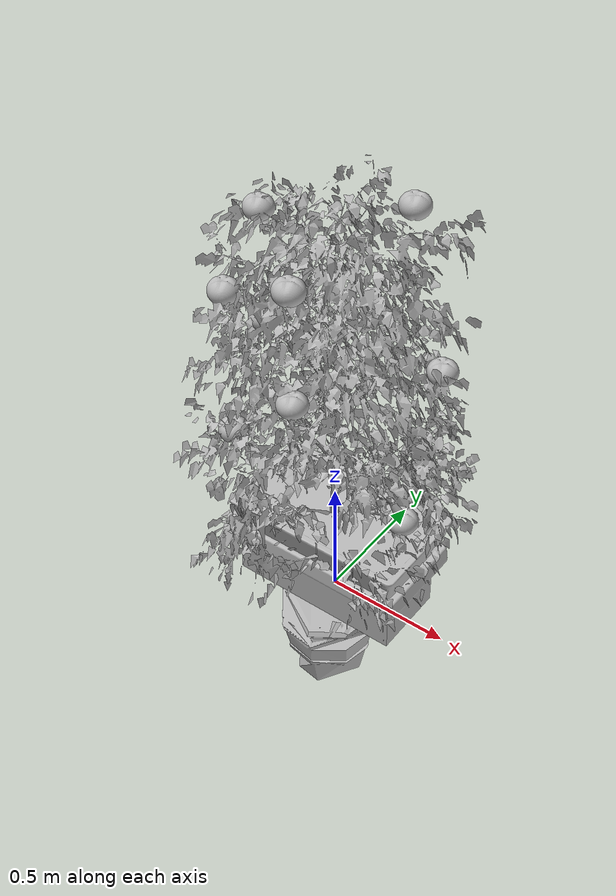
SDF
<?xml version="1.0"?>
<sdf version="1.6">
    <model name="plant_2">
    	<static>true</static>
      <include>
        <uri>model://models/plant</uri>
        <name>plant_2</name>
        <pose> 0 0 -0.45 0 0 0.3385939</pose>
      </include>

            <include>
        <uri>model://models/trough</uri>
        <name>trough</name>
        <pose>0 0 0 1.57 0 0</pose>
      </include>

      <include>
        <uri>model://models/tomato</uri>
        <name>tomato_20</name>
        <pose>-0.297 0.244 0.695 0 0 0</pose>
      </include>

      <include>
        <uri>model://models/tomato</uri>
        <name>tomato_21</name>
        <pose>0.164 0.199 1.684 0 0 0</pose>
      </include>

      <include>
        <uri>model://models/tomato</uri>
        <name>tomato_22</name>
        <pose>0.394 -0.151 0.705 0 0 0</pose>
      </include>

      <include>
        <uri>model://models/tomato</uri>
        <name>tomato_23</name>
        <pose>0.054 -0.308 1.158 0 0 0</pose>
      </include>

      <include>
        <uri>model://models/tomato</uri>
        <name>tomato_24</name>
        <pose>-0.236 -0.275 0.883 0 0 0</pose>
      </include>

      <include>
        <uri>model://models/tomato</uri>
        <name>tomato_25</name>
        <pose>-0.318 0.010 1.158 0 0 0</pose>
      </include>

      <include>
        <uri>model://models/tomato</uri>
        <name>tomato_26</name>
        <pose>0.351 0.120 1.158 0 0 0</pose>
      </include>

      <include>
        <uri>model://models/tomato</uri>
        <name>tomato_27</name>
        <pose>0.054 -0.308 1.599 0 0 0</pose>
      </include>

      <include>
        <uri>model://models/tomato</uri>
        <name>tomato_28</name>
        <pose>-0.236 -0.275 1.464 0 0 0</pose>
      </include>

      <include>
        <uri>model://models/tomato</uri>
        <name>tomato_29</name>
        <pose>-0.318 0.010 1.599 0 0 0</pose>
      </include>

  </model>
</sdf>

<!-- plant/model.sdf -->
<sdf version="1.6">
    <model name="plant">
      <link name="plant">
        <visual name="visual">
          <geometry>
            <mesh><uri>model://plant/meshes/plant.obj</uri></mesh>
          </geometry>
        </visual>
        <collision name="collision">
          <geometry>
            <box><size>2.32 1 1</size></box>
          </geometry>
        </collision>
      </link>
    </model>
</sdf>

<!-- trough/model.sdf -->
<sdf version="1.6">
    <model name="trough">
	   <static>true</static>
      <link name="trough_link">

        <visual name="visual">
          <geometry>
            <mesh><uri>model://trough/meshes/truf_brick.obj</uri></mesh>
          </geometry>
        </visual>

        <collision name="collision">
          <pose>0 0.3 0 0 0 0</pose>
          <geometry>
          <box>
            <size>0.75 0.2 0.42</size>
          </box>
           </geometry>
        </collision>
      </link>

    </model>
</sdf>

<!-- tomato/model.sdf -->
<sdf version="1.6">
    <model name="tomato">
      <link name="tomato_link">
        <visual name="visual">
          <geometry>
            <mesh><uri>model://models/tomato/meshes/tomato.obj</uri></mesh>
          </geometry>
        </visual>
        <collision name="collision">
          <geometry>
            <mesh><uri>model://models/tomato/meshes/tomato.obj</uri></mesh>
          </geometry>
        </collision>
      </link>
    </model>
</sdf>
